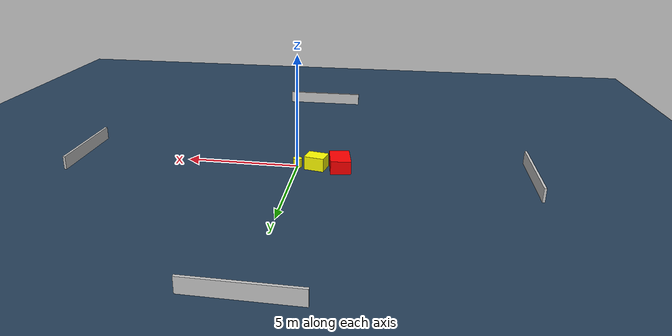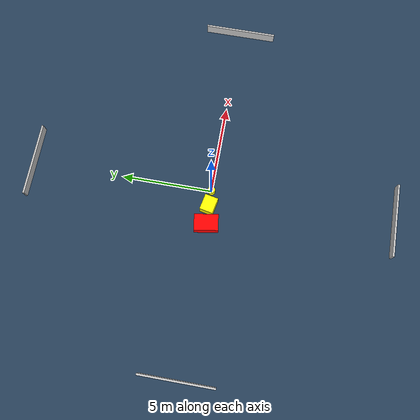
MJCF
<?xml version="1.0" ?>
<mujoco model="generated_environment">
  <option timestep="0.01" integrator="RK4" cone="elliptic"/>
  <default>
    <geom density="1"/>
  </default>
  <asset>
    <texture builtin="gradient" height="3072" name="skybox" rgb1="0.3 0.5 0.7" rgb2="0 0 0" type="skybox" width="512"/>
    <texture builtin="checker" height="300" name="groundplane" rgb1="0.2 0.3 0.4" rgb2="0.1 0.2 0.3" type="2d" width="300"/>
    <material name="groundplane" reflectance="0.2" texrepeat="5 5" texture="groundplane"/>
  </asset>
  <worldbody>
    <light dir="0 0 -1" directional="true" pos="0 0 1.5"/>
    <geom condim="3" friction="0.5 0.005 0.001" material="groundplane" name="floor" pos="0 0 0" size="0 0 0.05" type="plane"/>
    <body name="walls">
      <geom name="wall_1" condim="4" pos="-10.0 0.0 0.3" rgba="0.800000011920929 0.800000011920929 0.800000011920929 1.0" size="0.05 2.0 0.3" type="box"/>
      <geom name="wall_2" condim="4" pos="10.0 0.0 0.3" rgba="0.800000011920929 0.800000011920929 0.800000011920929 1.0" size="0.05 2.0 0.3" type="box"/>
      <geom name="wall_3" condim="4" pos="0.0 -10.0 0.3" rgba="0.800000011920929 0.800000011920929 0.800000011920929 1.0" size="2.0 0.05 0.3" type="box"/>
      <geom name="wall_4" condim="4" pos="0.0 10.0 0.3" rgba="0.800000011920929 0.800000011920929 0.800000011920929 1.0" size="2.0 0.05 0.3" type="box"/>
    </body>
    <body name="robot">
      <joint name="joint_x" type="slide" pos="0 0 0" axis="1 0 0"/>
      <joint name="joint_y" type="slide" pos="0 0 0" axis="0 1 0"/>
      <geom name="robot" type="cylinder" pos="0.0 0.0 0.2" size="0.2 0.2 0.0" mass="5.0" friction="1.0 0.005 0.0001" condim="4" rgba="1.0 1.0 0.0 1.0"/>
    </body>
    <body name="obstacle_1_movable">
      <geom name="obstacle_1_movable" condim="4" pos="-0.8469758545842356 -0.001723787741136157 0.3" euler="0 0 348.4394343735003" friction="0.0 0.005 0.001" rgba="1.0 1.0 0.0 1.0" size="0.4426411822415801 0.36924065926329586 0.3" type="box" mass="0.1"/>
      <joint type="free"/>
    </body>
    <body name="obstacle_2_static">
      <geom name="obstacle_2_static" condim="4" pos="-1.8805035856582066 -0.03529137986024191 0.3" euler="0 0 98.8471992789432" friction="0.0 0.005 0.001" rgba="1.0 0.0 0.0 1.0" size="0.652121875653332 0.4428653495399442 0.3" type="box"/>
    </body>
  </worldbody>
  <actuator>
    <motor name="actuator_x" joint="joint_x" gear="1" ctrlrange="-1 1"/>
    <motor name="actuator_y" joint="joint_y" gear="1" ctrlrange="-1 1"/>
  </actuator>
</mujoco>
